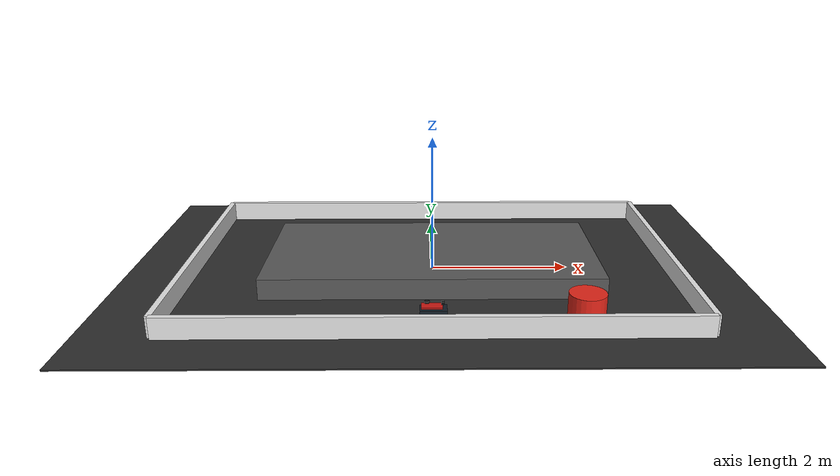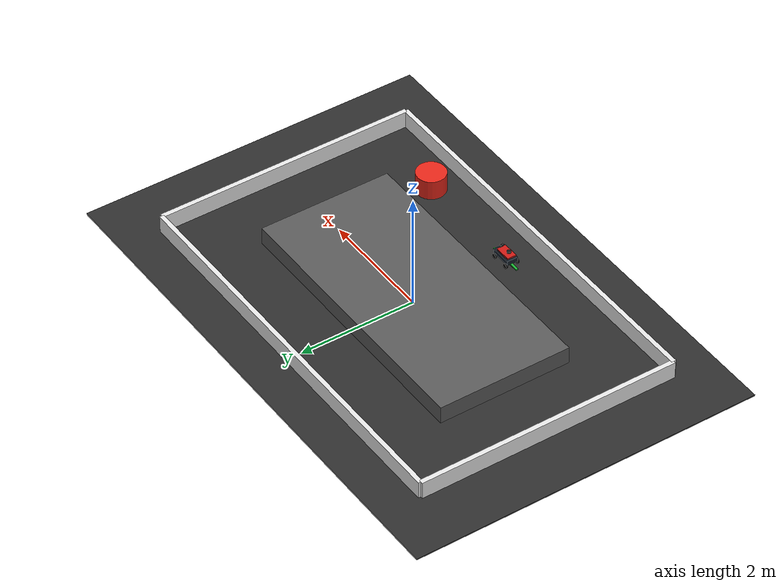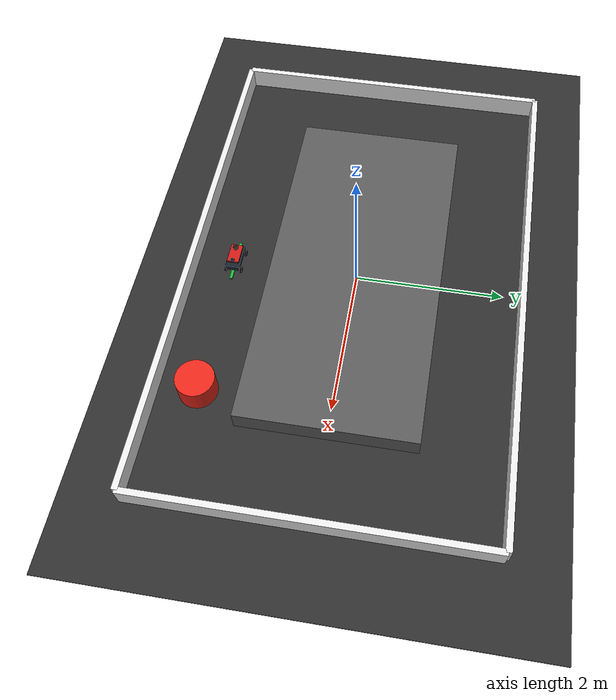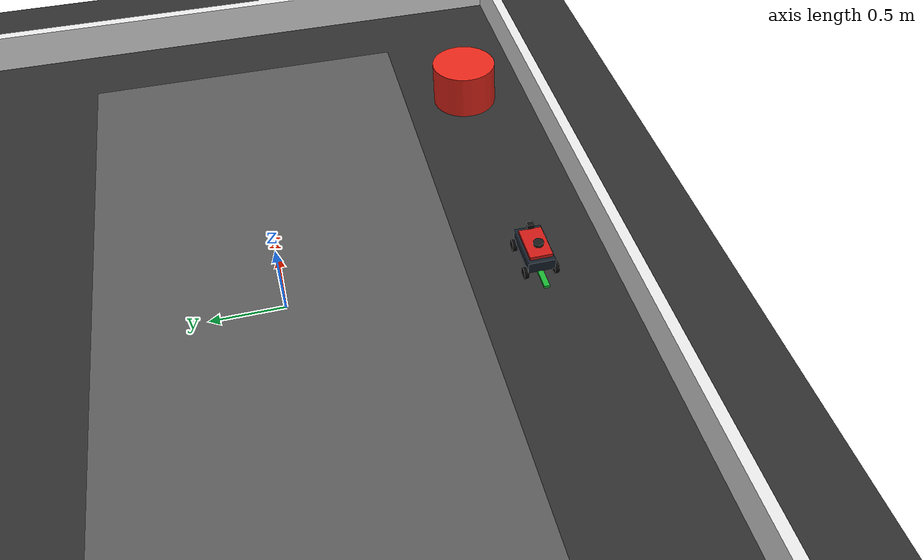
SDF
<?xml version="1.0" ?>
<sdf version="1.9">
  <world name="osracer_rect_track_obstacle">
    <plugin filename="gz-sim-physics-system" name="gz::sim::systems::Physics"/>
    <plugin filename="gz-sim-user-commands-system" name="gz::sim::systems::UserCommands"/>
    <plugin filename="gz-sim-scene-broadcaster-system" name="gz::sim::systems::SceneBroadcaster"/>
    <plugin filename="gz-sim-sensors-system" name="gz::sim::systems::Sensors">
      <render_engine>ogre2</render_engine>
    </plugin>
    <plugin filename="gz-sim-imu-system" name="gz::sim::systems::Imu"/>

    <gravity>0 0 -9.8</gravity>
    <magnetic_field>0 0 0</magnetic_field>
    <atmosphere type="adiabatic"/>

    <light name="sun" type="directional">
      <pose>0 0 8 0 0 0</pose>
      <diffuse>0.8 0.8 0.8 1</diffuse>
      <specular>0.2 0.2 0.2 1</specular>
      <direction>-0.5 0.1 -0.9</direction>
    </light>

    <model name="ground">
      <static>true</static>
      <link name="ground_link">
        <collision name="collision">
          <geometry>
            <box>
              <size>9 6 0.02</size>
            </box>
          </geometry>
        </collision>
        <visual name="visual">
          <geometry>
            <box>
              <size>9 6 0.02</size>
            </box>
          </geometry>
          <material>
            <diffuse>0.18 0.18 0.18 1</diffuse>
          </material>
        </visual>
      </link>
    </model>

    <model name="outer_walls">
      <static>true</static>
      <link name="outer_walls_link">
        <pose>0 0 0.16 0 0 0</pose>
        <collision name="south_collision">
          <pose>0 -2.25 0 0 0 0</pose>
          <geometry><box><size>7.0 0.08 0.30</size></box></geometry>
        </collision>
        <visual name="south_visual">
          <pose>0 -2.25 0 0 0 0</pose>
          <geometry><box><size>7.0 0.08 0.30</size></box></geometry>
          <material><diffuse>0.9 0.9 0.9 1</diffuse></material>
        </visual>
        <collision name="north_collision">
          <pose>0 2.25 0 0 0 0</pose>
          <geometry><box><size>7.0 0.08 0.30</size></box></geometry>
        </collision>
        <visual name="north_visual">
          <pose>0 2.25 0 0 0 0</pose>
          <geometry><box><size>7.0 0.08 0.30</size></box></geometry>
          <material><diffuse>0.9 0.9 0.9 1</diffuse></material>
        </visual>
        <collision name="west_collision">
          <pose>-3.5 0 0 0 0 0</pose>
          <geometry><box><size>0.08 4.5 0.30</size></box></geometry>
        </collision>
        <visual name="west_visual">
          <pose>-3.5 0 0 0 0 0</pose>
          <geometry><box><size>0.08 4.5 0.30</size></box></geometry>
          <material><diffuse>0.9 0.9 0.9 1</diffuse></material>
        </visual>
        <collision name="east_collision">
          <pose>3.5 0 0 0 0 0</pose>
          <geometry><box><size>0.08 4.5 0.30</size></box></geometry>
        </collision>
        <visual name="east_visual">
          <pose>3.5 0 0 0 0 0</pose>
          <geometry><box><size>0.08 4.5 0.30</size></box></geometry>
          <material><diffuse>0.9 0.9 0.9 1</diffuse></material>
        </visual>
      </link>
    </model>

    <model name="inner_island">
      <static>true</static>
      <link name="inner_island_link">
        <pose>0 0 0.16 0 0 0</pose>
        <collision name="collision">
          <geometry>
            <box>
              <size>4.8 2.3 0.30</size>
            </box>
          </geometry>
        </collision>
        <visual name="visual">
          <geometry>
            <box>
              <size>4.8 2.3 0.30</size>
            </box>
          </geometry>
          <material>
            <diffuse>0.35 0.35 0.35 1</diffuse>
          </material>
        </visual>
      </link>
    </model>

    <model name="start_marker">
      <static>true</static>
      <link name="start_marker_link">
        <pose>0 -1.7 0.03 0 0 0</pose>
        <visual name="visual">
          <geometry>
            <box>
              <size>0.6 0.04 0.02</size>
            </box>
          </geometry>
          <material>
            <diffuse>0.1 0.7 0.2 1</diffuse>
          </material>
        </visual>
      </link>
    </model>

    <model name="front_obstacle">
      <static>true</static>
      <pose>2.0 -1.7 0.18 0 0 0</pose>
      <link name="front_obstacle_link">
        <collision name="collision">
          <geometry>
            <cylinder>
              <radius>0.25</radius>
              <length>0.35</length>
            </cylinder>
          </geometry>
        </collision>
        <visual name="visual">
          <geometry>
            <cylinder>
              <radius>0.25</radius>
              <length>0.35</length>
            </cylinder>
          </geometry>
          <material>
            <diffuse>0.9 0.15 0.1 1</diffuse>
          </material>
        </visual>
      </link>
    </model>

    <include>
      <uri>model://osracer_simple</uri>
      <name>osracer_simple</name>
      <pose>0 -1.7 0.09 0 0 0</pose>
    </include>
  </world>
</sdf>

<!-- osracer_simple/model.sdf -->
<sdf version="1.9">
  <model name="osracer_simple">
    <static>false</static>
    <pose>0 0 0.09 0 0 0</pose>

    <link name="base_link">
      <inertial>
        <mass>2.8</mass>
        <inertia>
          <ixx>0.030</ixx>
          <iyy>0.045</iyy>
          <izz>0.065</izz>
          <ixy>0</ixy>
          <ixz>0</ixz>
          <iyz>0</iyz>
        </inertia>
      </inertial>
      <collision name="chassis_collision">
        <pose>0 0 0.02 0 0 0</pose>
        <geometry>
          <box>
            <size>0.36 0.19 0.08</size>
          </box>
        </geometry>
      </collision>
      <visual name="chassis_visual">
        <pose>0 0 0.02 0 0 0</pose>
        <geometry>
          <box>
            <size>0.36 0.19 0.08</size>
          </box>
        </geometry>
        <material>
          <diffuse>0.08 0.12 0.16 1</diffuse>
        </material>
      </visual>
      <visual name="deck_visual">
        <pose>-0.02 0 0.085 0 0 0</pose>
        <geometry>
          <box>
            <size>0.28 0.16 0.025</size>
          </box>
        </geometry>
        <material>
          <diffuse>0.8 0.1 0.08 1</diffuse>
        </material>
      </visual>
      <visual name="laser_visual">
        <pose>-0.083 0 0.145 0 0 0</pose>
        <geometry>
          <cylinder>
            <radius>0.035</radius>
            <length>0.025</length>
          </cylinder>
        </geometry>
        <material>
          <diffuse>0.1 0.1 0.1 1</diffuse>
        </material>
      </visual>
      <sensor name="laser_sensor" type="gpu_lidar">
        <pose>-0.083 0 0.145 0 0 0</pose>
        <topic>/gazebo/scan</topic>
        <update_rate>20</update_rate>
        <lidar>
          <scan>
            <horizontal>
              <samples>541</samples>
              <resolution>1</resolution>
              <min_angle>-2.35619</min_angle>
              <max_angle>2.35619</max_angle>
            </horizontal>
          </scan>
          <range>
            <min>0.12</min>
            <max>8.0</max>
            <resolution>0.01</resolution>
          </range>
          <noise>
            <type>gaussian</type>
            <mean>0.0</mean>
            <stddev>0.01</stddev>
          </noise>
        </lidar>
        <always_on>true</always_on>
        <visualize>true</visualize>
      </sensor>
      <sensor name="imu_sensor" type="imu">
        <pose>0.04 0 0.06 0 0 0</pose>
        <topic>/gazebo/imu</topic>
        <update_rate>100</update_rate>
        <always_on>true</always_on>
      </sensor>
      <visual name="camera_visual">
        <pose>0.12 0 0.13 0 0 0</pose>
        <geometry>
          <box>
            <size>0.04 0.045 0.035</size>
          </box>
        </geometry>
        <material>
          <diffuse>0.05 0.05 0.05 1</diffuse>
        </material>
      </visual>
    </link>

    <link name="left_steering_hinge_link">
      <pose>0.1425 0.1075 0.0 0 0 0</pose>
      <inertial>
        <mass>0.05</mass>
        <inertia>
          <ixx>0.00004</ixx>
          <iyy>0.00004</iyy>
          <izz>0.00004</izz>
          <ixy>0</ixy>
          <ixz>0</ixz>
          <iyz>0</iyz>
        </inertia>
      </inertial>
    </link>

    <link name="right_steering_hinge_link">
      <pose>0.1425 -0.1075 0.0 0 0 0</pose>
      <inertial>
        <mass>0.05</mass>
        <inertia>
          <ixx>0.00004</ixx>
          <iyy>0.00004</iyy>
          <izz>0.00004</izz>
          <ixy>0</ixy>
          <ixz>0</ixz>
          <iyz>0</iyz>
        </inertia>
      </inertial>
    </link>

    <link name="Left_front_wheel_link">
      <pose>0.1425 0.1075 -0.0475 1.5708 0 0</pose>
      <inertial>
        <mass>0.10</mass>
        <inertia>
          <ixx>0.00009</ixx>
          <iyy>0.00009</iyy>
          <izz>0.00009</izz>
          <ixy>0</ixy>
          <ixz>0</ixz>
          <iyz>0</iyz>
        </inertia>
      </inertial>
      <collision name="collision">
        <geometry>
          <cylinder>
            <radius>0.0425</radius>
            <length>0.030</length>
          </cylinder>
        </geometry>
      </collision>
      <visual name="visual">
        <geometry>
          <cylinder>
            <radius>0.0425</radius>
            <length>0.030</length>
          </cylinder>
        </geometry>
        <material>
          <diffuse>0.02 0.02 0.02 1</diffuse>
        </material>
      </visual>
    </link>

    <link name="right_front_wheel_link">
      <pose>0.1425 -0.1075 -0.0475 1.5708 0 0</pose>
      <inertial>
        <mass>0.10</mass>
        <inertia>
          <ixx>0.00009</ixx>
          <iyy>0.00009</iyy>
          <izz>0.00009</izz>
          <ixy>0</ixy>
          <ixz>0</ixz>
          <iyz>0</iyz>
        </inertia>
      </inertial>
      <collision name="collision">
        <geometry>
          <cylinder>
            <radius>0.0425</radius>
            <length>0.030</length>
          </cylinder>
        </geometry>
      </collision>
      <visual name="visual">
        <geometry>
          <cylinder>
            <radius>0.0425</radius>
            <length>0.030</length>
          </cylinder>
        </geometry>
        <material>
          <diffuse>0.02 0.02 0.02 1</diffuse>
        </material>
      </visual>
    </link>

    <link name="left_rear_wheel_link">
      <pose>-0.1425 0.1075 -0.0475 1.5708 0 0</pose>
      <inertial>
        <mass>0.10</mass>
        <inertia>
          <ixx>0.00009</ixx>
          <iyy>0.00009</iyy>
          <izz>0.00009</izz>
          <ixy>0</ixy>
          <ixz>0</ixz>
          <iyz>0</iyz>
        </inertia>
      </inertial>
      <collision name="collision">
        <geometry>
          <cylinder>
            <radius>0.0425</radius>
            <length>0.030</length>
          </cylinder>
        </geometry>
      </collision>
      <visual name="visual">
        <geometry>
          <cylinder>
            <radius>0.0425</radius>
            <length>0.030</length>
          </cylinder>
        </geometry>
        <material>
          <diffuse>0.02 0.02 0.02 1</diffuse>
        </material>
      </visual>
    </link>

    <link name="right_rear_wheel_link">
      <pose>-0.1425 -0.1075 -0.0475 1.5708 0 0</pose>
      <inertial>
        <mass>0.10</mass>
        <inertia>
          <ixx>0.00009</ixx>
          <iyy>0.00009</iyy>
          <izz>0.00009</izz>
          <ixy>0</ixy>
          <ixz>0</ixz>
          <iyz>0</iyz>
        </inertia>
      </inertial>
      <collision name="collision">
        <geometry>
          <cylinder>
            <radius>0.0425</radius>
            <length>0.030</length>
          </cylinder>
        </geometry>
      </collision>
      <visual name="visual">
        <geometry>
          <cylinder>
            <radius>0.0425</radius>
            <length>0.030</length>
          </cylinder>
        </geometry>
        <material>
          <diffuse>0.02 0.02 0.02 1</diffuse>
        </material>
      </visual>
    </link>

    <joint name="left_steering_hinge_joint" type="revolute">
      <parent>base_link</parent>
      <child>left_steering_hinge_link</child>
      <pose>0 0 0 0 0 0</pose>
      <axis>
        <xyz>0 0 1</xyz>
        <limit>
          <lower>-0.5236</lower>
          <upper>0.5236</upper>
        </limit>
      </axis>
    </joint>

    <joint name="right_steering_hinge_joint" type="revolute">
      <parent>base_link</parent>
      <child>right_steering_hinge_link</child>
      <pose>0 0 0 0 0 0</pose>
      <axis>
        <xyz>0 0 1</xyz>
        <limit>
          <lower>-0.5236</lower>
          <upper>0.5236</upper>
        </limit>
      </axis>
    </joint>

    <joint name="Left_front_wheel_joint" type="revolute">
      <parent>left_steering_hinge_link</parent>
      <child>Left_front_wheel_link</child>
      <axis>
        <xyz>0 1 0</xyz>
      </axis>
    </joint>

    <joint name="right_front_wheel_joint" type="revolute">
      <parent>right_steering_hinge_link</parent>
      <child>right_front_wheel_link</child>
      <axis>
        <xyz>0 1 0</xyz>
      </axis>
    </joint>

    <joint name="left_rear_wheel_joint" type="revolute">
      <parent>base_link</parent>
      <child>left_rear_wheel_link</child>
      <axis>
        <xyz>0 1 0</xyz>
      </axis>
    </joint>

    <joint name="right_rear_wheel_joint" type="revolute">
      <parent>base_link</parent>
      <child>right_rear_wheel_link</child>
      <axis>
        <xyz>0 1 0</xyz>
      </axis>
    </joint>

    <plugin
      filename="ignition-gazebo-joint-position-controller-system"
      name="gz::sim::systems::JointPositionController">
      <joint_name>left_steering_hinge_joint</joint_name>
      <topic>/gazebo/left_steering_position</topic>
      <p_gain>8.0</p_gain>
      <i_gain>0.0</i_gain>
      <d_gain>0.2</d_gain>
      <cmd_max>80.0</cmd_max>
      <cmd_min>-80.0</cmd_min>
    </plugin>

    <plugin
      filename="ignition-gazebo-joint-position-controller-system"
      name="gz::sim::systems::JointPositionController">
      <joint_name>right_steering_hinge_joint</joint_name>
      <topic>/gazebo/right_steering_position</topic>
      <p_gain>8.0</p_gain>
      <i_gain>0.0</i_gain>
      <d_gain>0.2</d_gain>
      <cmd_max>80.0</cmd_max>
      <cmd_min>-80.0</cmd_min>
    </plugin>

    <plugin
      filename="ignition-gazebo-joint-controller-system"
      name="gz::sim::systems::JointController">
      <joint_name>Left_front_wheel_joint</joint_name>
    </plugin>

    <plugin
      filename="ignition-gazebo-joint-controller-system"
      name="gz::sim::systems::JointController">
      <joint_name>right_front_wheel_joint</joint_name>
    </plugin>

    <plugin
      filename="ignition-gazebo-joint-controller-system"
      name="gz::sim::systems::JointController">
      <joint_name>left_rear_wheel_joint</joint_name>
    </plugin>

    <plugin
      filename="ignition-gazebo-joint-controller-system"
      name="gz::sim::systems::JointController">
      <joint_name>right_rear_wheel_joint</joint_name>
    </plugin>
  </model>
</sdf>
